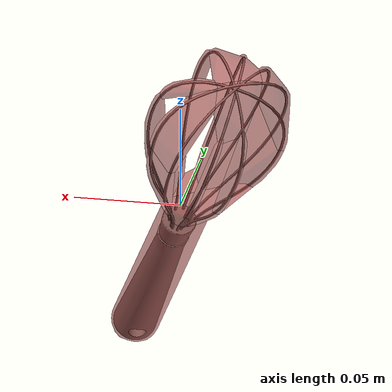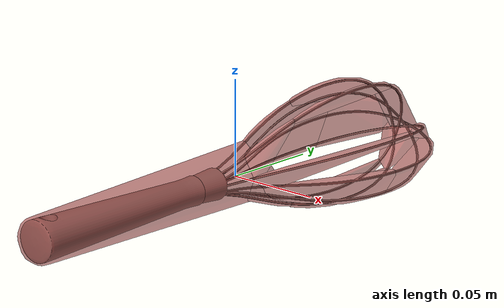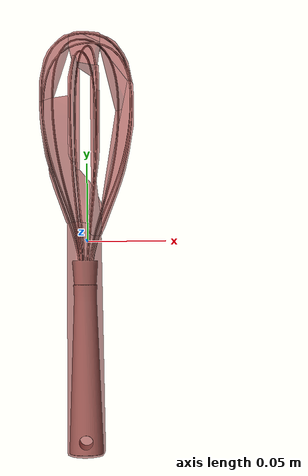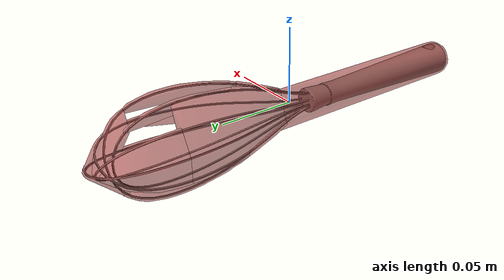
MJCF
<mujoco model="model">
  <option timestep="0.002" gravity="0.0 0.0 -9.81"/>
  <compiler angle="radian"/>
  <asset>
    <mesh file="visual/Whisk006.obj" name="Whisk006_vis"/>
    <mesh file="visual/Prop.obj" name="Whisk006_Prop_vis"/>
    <texture file="visual/T_BC001.png" name="Whisk006_material" type="2d"/>
    <material name="Whisk006_material" rgba="1 1 1 1.0" texture="Whisk006_material" shininess="0.4472135901451111" specular="0.3103448502657381"/>
    <texture file="visual/T_BC001.png" name="Whisk006_Prop_material" type="2d"/>
    <material name="Whisk006_Prop_material" rgba="1 1 1 1.0" texture="Whisk006_Prop_material" shininess="1" specular="2"/>
    <mesh file="collision/collision_mesh_collision_0.obj" name="Whisk006_collision_mesh_0"/>
    <mesh file="collision/collision_mesh_collision_1.obj" name="Whisk006_collision_mesh_1"/>
    <mesh file="collision/collision_mesh_collision_2.obj" name="Whisk006_collision_mesh_2"/>
    <mesh file="collision/collision_mesh_collision_3.obj" name="Whisk006_collision_mesh_3"/>
    <mesh file="collision/collision_mesh_collision_4.obj" name="Whisk006_collision_mesh_4"/>
    <mesh file="collision/collision_mesh_collision_5.obj" name="Whisk006_collision_mesh_5"/>
    <mesh file="collision/collision_mesh_collision_6.obj" name="Whisk006_collision_mesh_6"/>
    <mesh file="collision/collision_mesh_collision_7.obj" name="Whisk006_collision_mesh_7"/>
    <mesh file="collision/collision_mesh_collision_8.obj" name="Whisk006_collision_mesh_8"/>
    <mesh file="collision/collision_mesh_collision_9.obj" name="Whisk006_collision_mesh_9"/>
    <mesh file="collision/collision_mesh_collision_10.obj" name="Whisk006_collision_mesh_10"/>
    <mesh file="collision/collision_mesh_collision_11.obj" name="Whisk006_collision_mesh_11"/>
    <mesh file="collision/collision_mesh_collision_12.obj" name="Whisk006_collision_mesh_12"/>
    <mesh file="collision/collision_mesh_collision_13.obj" name="Whisk006_collision_mesh_13"/>
    <mesh file="collision/collision_mesh_collision_14.obj" name="Whisk006_collision_mesh_14"/>
  </asset>
  <default>
    <default class="visual">
      <geom conaffinity="0" contype="0" group="1" type="mesh"/>
    </default>
    <default class="collision">
      <geom group="0" rgba="0.5 0 0 0.5" density="1.0" solref="0.004 1" solimp="0.998 0.998 0.001"/>
    </default>
    <default class="spawn">
      <geom group="0" rgba="1 1 1 0.5" contype="0" conaffinity="0"/>
      <site group="0" rgba="1 1 1 0.5"/>
    </default>
    <default class="region">
      <geom group="1" conaffinity="0" contype="0" rgba="0 1 0 0" mass="0"/>
    </default>
  </default>
  <worldbody>
    <body>
      <body name="object">
        <geom mesh="Whisk006_vis" type="mesh" solimp="0.998 0.998 0.001" solref="0.001 1" friction="0.95 0.3 0.1" class="visual" material="Whisk006_material"/>
        <body name="Whisk006_Prop">
          <geom mesh="Whisk006_Prop_vis" type="mesh" solimp="0.998 0.998 0.001" solref="0.001 1" friction="0.95 0.3 0.1" class="visual" material="Whisk006_Prop_material"/>
        </body>
        <geom class="region" name="reg_bbox" type="box" pos="2.531000000000061e-05 -0.00046523999999999177 -6.391500000000119e-05" size="0.03018458 0.1364549 0.030186615"/>
        <geom mesh="Whisk006_collision_mesh_0" type="mesh" class="collision"/>
        <geom mesh="Whisk006_collision_mesh_1" type="mesh" class="collision"/>
        <geom mesh="Whisk006_collision_mesh_2" type="mesh" class="collision"/>
        <geom mesh="Whisk006_collision_mesh_3" type="mesh" class="collision"/>
        <geom mesh="Whisk006_collision_mesh_4" type="mesh" class="collision"/>
        <geom mesh="Whisk006_collision_mesh_5" type="mesh" class="collision"/>
        <geom mesh="Whisk006_collision_mesh_6" type="mesh" class="collision"/>
        <geom mesh="Whisk006_collision_mesh_7" type="mesh" class="collision"/>
        <geom mesh="Whisk006_collision_mesh_8" type="mesh" class="collision"/>
        <geom mesh="Whisk006_collision_mesh_9" type="mesh" class="collision"/>
        <geom mesh="Whisk006_collision_mesh_10" type="mesh" class="collision"/>
        <geom mesh="Whisk006_collision_mesh_11" type="mesh" class="collision"/>
        <geom mesh="Whisk006_collision_mesh_12" type="mesh" class="collision"/>
        <geom mesh="Whisk006_collision_mesh_13" type="mesh" class="collision"/>
        <geom mesh="Whisk006_collision_mesh_14" type="mesh" class="collision"/>
      </body>
    </body>
  </worldbody>
  <actuator/>
</mujoco>
